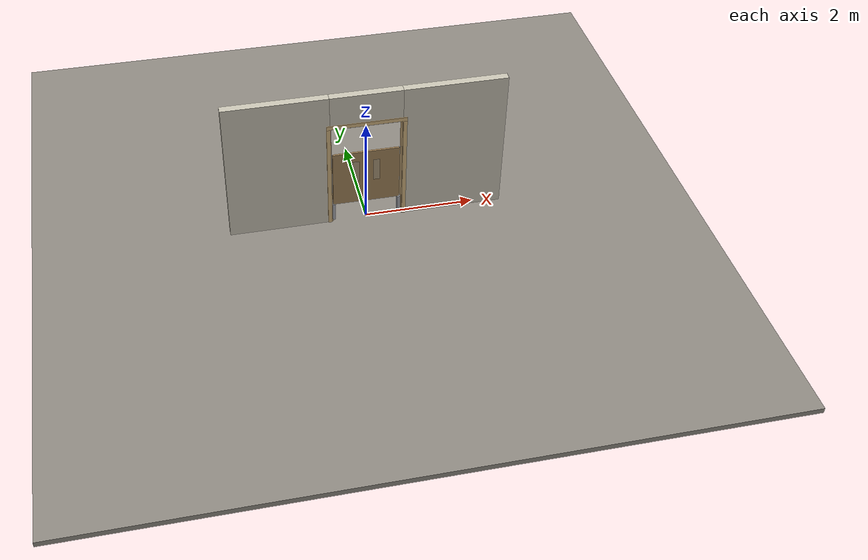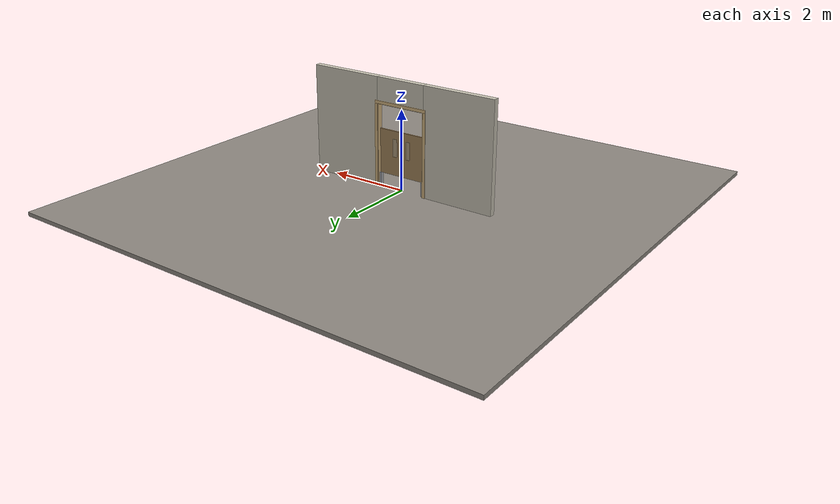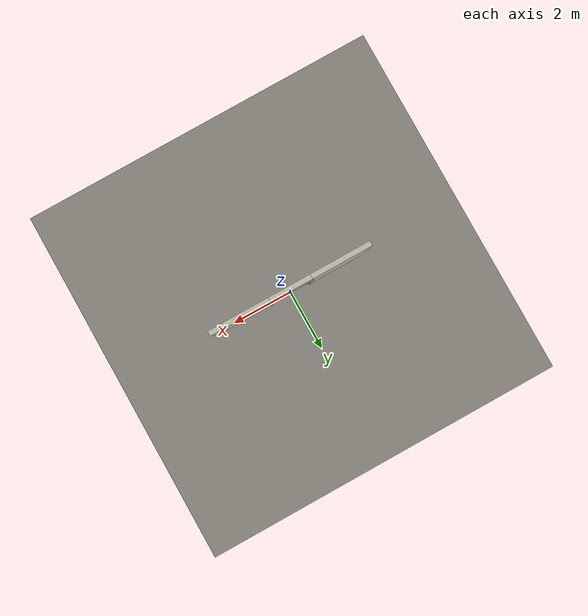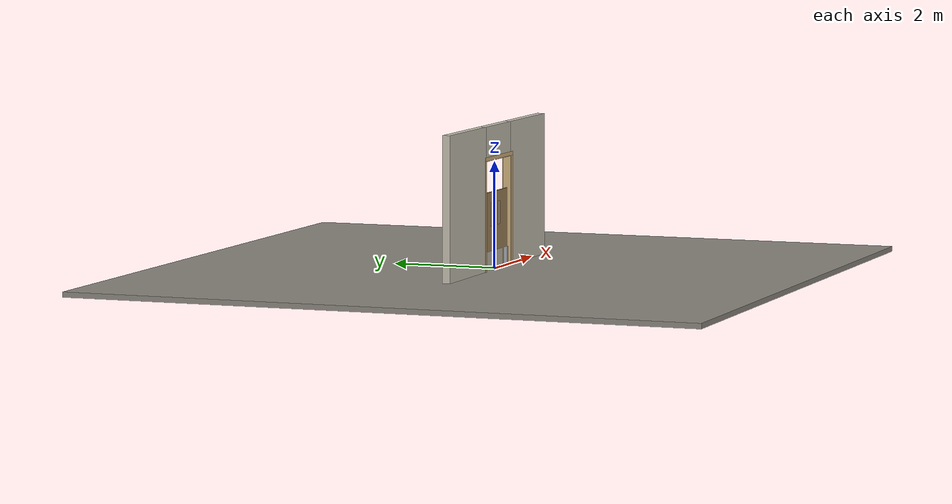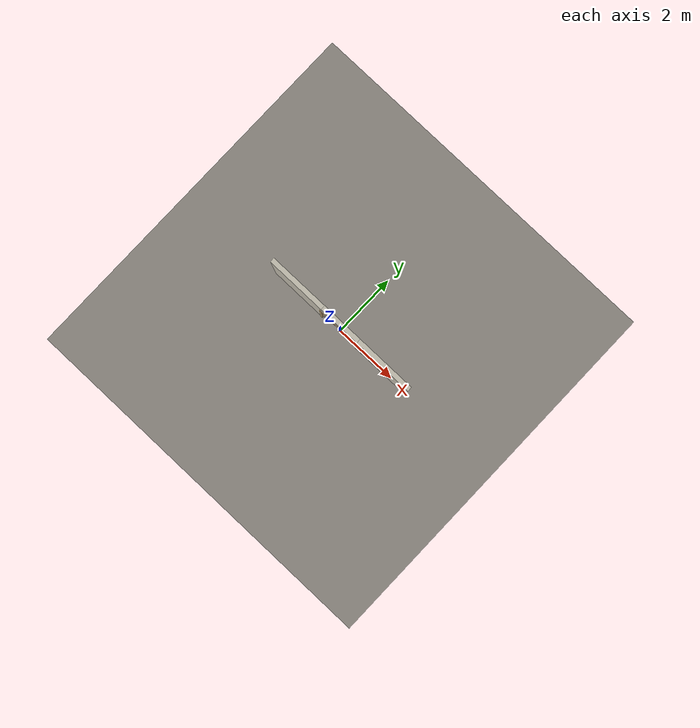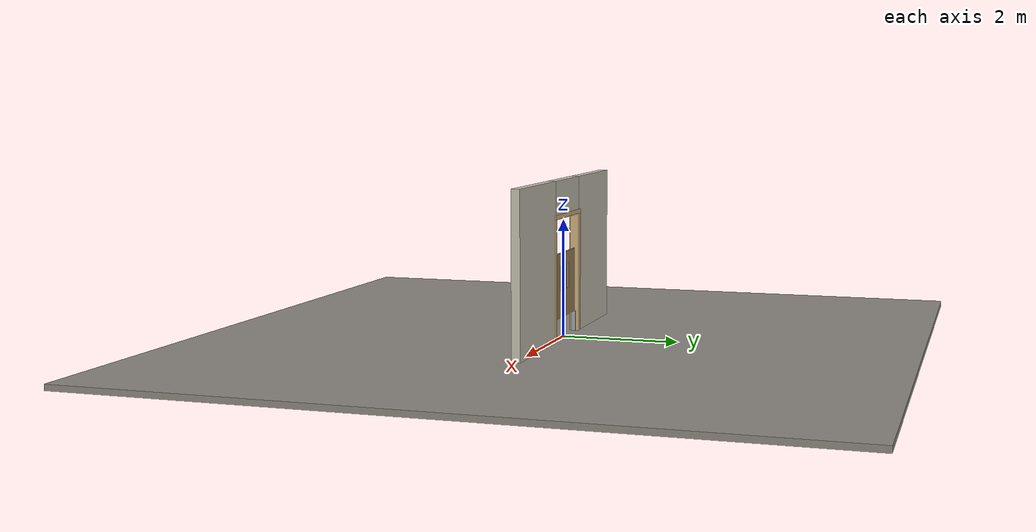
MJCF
<?xml version="1.0" ?>
<mujoco model="db0991_saloon_full">
  <compiler angle="radian" meshdir="../../hardware" texturedir="../../textures" autolimits="true" inertiafromgeom="false"/>
  <option timestep="0.002" integrator="implicitfast" cone="elliptic" impratio="10" noslip_iterations="3">
    <flag multiccd="enable"/>
  </option>
  <size memory="16M"/>
  <default>
    <geom condim="4" solref="0.005 1" solimp="0.95 0.99 0.001"/>
    <joint solreflimit="0.005 1" solimplimit="0.95 0.99 0.001"/>
    <tendon solreflimit="0.005 1"/>
    <equality solref="0.002 1"/>
  </default>
  <visual>
    <headlight ambient="0.4 0.4 0.4" diffuse="0.7 0.7 0.7" specular="0.2 0.2 0.2"/>
    <quality shadowsize="4096"/>
    <map znear="0.01" zfar="60"/>
  </visual>
  <asset>
    <material name="mat_floor" rgba="0.55 0.53 0.5 1" specular="0.2" shininess="0.15" reflectance="0"/>
    <material name="mat_wall" rgba="0.78 0.76 0.7 1" specular="0.2" shininess="0.1" reflectance="0"/>
    <material name="mat_frame" rgba="0.82 0.7 0.5 1" specular="0.2" shininess="0.45" reflectance="0"/>
    <material name="mat_leaf_a" rgba="0.629 0.51 0.345 1" specular="0.2" shininess="0.45" reflectance="0"/>
    <material name="mat_glass" rgba="0.85 0.92 0.95 0.25" specular="0.2" shininess="0.95" reflectance="0.1"/>
    <material name="mat_hinge" rgba="0.65 0.66 0.68 1" specular="0.74" shininess="0.5" reflectance="0.36"/>
    <material name="mat_leaf_b" rgba="0.629 0.51 0.345 1" specular="0.2" shininess="0.45" reflectance="0"/>
    <texture name="skybox" type="skybox" builtin="gradient" rgb1="0.6 0.7 0.85" rgb2="0.9 0.92 0.95" width="256" height="256"/>
  </asset>
  <worldbody>
    <light name="sun" pos="1.5 -2.5 4" dir="-0.3 0.5 -0.8" directional="true" diffuse="0.8 0.8 0.8" specular="0.3 0.3 0.3" castshadow="true"/>
    <light name="fill" pos="-1.5 2.5 3" dir="0.3 -0.5 -0.7" directional="true" diffuse="0.35 0.35 0.4" castshadow="false"/>
    <camera name="robot_view" pos="0 -2.546875 1.738125" xyaxes="1 0 0 0 0.26963 0.962964" fovy="52"/>
    <camera name="far_view" pos="0 2.546875 1.738125" xyaxes="-1 0 0 0 -0.26963 0.962964" fovy="52"/>
    <camera name="iso" pos="1.935625 -2.139375 2.145625" xyaxes="0.741536 0.670913 0 -0.242917 0.268487 0.932151" fovy="46"/>
    <camera name="detail_handle" pos="0.48 -0.8 1.28" xyaxes="0.97561 0.219512 0 -0.070934 0.315262 0.94635" fovy="38"/>
    <geom name="floor" type="box" size="6 6 0.05" pos="0 0 -0.05" material="mat_floor" group="0" contype="1" conaffinity="1" friction="0.8 0.005 0.0001" density="2400"/>
    <geom name="wall_left" type="box" size="0.92575 0.0725 1.35" pos="-1.57425 0 1.35" material="mat_wall" group="0" contype="1" conaffinity="1" friction="0.6 0.005 0.0001" density="800"/>
    <geom name="wall_right" type="box" size="0.92575 0.0725 1.35" pos="1.57425 0 1.35" material="mat_wall" group="0" contype="1" conaffinity="1" friction="0.6 0.005 0.0001" density="800"/>
    <geom name="wall_header" type="box" size="0.6485 0.0725 0.3155" pos="0 0 2.3845" material="mat_wall" group="0" contype="1" conaffinity="1" friction="0.6 0.005 0.0001" density="800"/>
    <geom name="jamb_hinge" type="box" size="0.0095 0.0725 1.025" pos="-0.639 0 1.025" material="mat_frame" group="0" contype="1" conaffinity="1" friction="0.6 0.005 0.0001" density="400"/>
    <geom name="jamb_strike" type="box" size="0.0095 0.0725 1.025" pos="0.639 0 1.025" material="mat_frame" group="0" contype="1" conaffinity="1" friction="0.6 0.005 0.0001" density="400"/>
    <geom name="stud_strike" type="box" size="0.015 0.0725 1.025" pos="0.6635 0 1.025" material="mat_wall" group="0" contype="1" conaffinity="1" friction="0.6 0.005 0.0001" density="500"/>
    <geom name="jamb_head" type="box" size="0.6635 0.0725 0.0095" pos="0.015 0 2.0595" material="mat_frame" group="0" contype="1" conaffinity="1" friction="0.6 0.005 0.0001" density="400"/>
    <geom name="head_stud" type="box" size="0.6635 0.0725 0.015" pos="0.015 0 2.084" material="mat_wall" group="0" contype="1" conaffinity="1" friction="0.6 0.005 0.0001" density="500"/>
    <geom name="casing_l_n" type="box" size="0.035 0.008 1.0345" pos="-0.6785 -0.0805 1.025" material="mat_frame" group="2" contype="0" conaffinity="0" density="400"/>
    <geom name="casing_r_n" type="box" size="0.035 0.008 1.0345" pos="0.6785 -0.0805 1.025" material="mat_frame" group="2" contype="0" conaffinity="0" density="400"/>
    <geom name="casing_h_n" type="box" size="0.7135 0.008 0.035" pos="0 -0.0805 2.099" material="mat_frame" group="2" contype="0" conaffinity="0" density="400"/>
    <geom name="casing_l_p" type="box" size="0.035 0.008 1.0345" pos="-0.6785 0.0805 1.025" material="mat_frame" group="2" contype="0" conaffinity="0" density="400"/>
    <geom name="casing_r_p" type="box" size="0.035 0.008 1.0345" pos="0.6785 0.0805 1.025" material="mat_frame" group="2" contype="0" conaffinity="0" density="400"/>
    <geom name="casing_h_p" type="box" size="0.7135 0.008 0.035" pos="0 0.0805 2.099" material="mat_frame" group="2" contype="0" conaffinity="0" density="400"/>
    <geom name="pivot_bottom_socket" type="box" size="0.035 0.035 0.179" pos="-0.606 0 0.169" material="mat_hinge" group="1" contype="0" conaffinity="0" density="7850"/>
    <geom name="pivot_bottom_socket_2" type="box" size="0.035 0.035 0.179" pos="0.606 0 0.169" material="mat_hinge" group="1" contype="0" conaffinity="0" density="7850"/>
    <site name="approach_point" pos="0 -1.5 0" quat="1 0 0 0" size="0.05" rgba="0.2 0.9 0.2 0.5" group="4"/>
    <site name="goal_point" pos="0 1.5 0" quat="1 0 0 0" size="0.05" rgba="0.2 0.9 0.2 0.5" group="4"/>
    <site name="door_plane_center" pos="0 0 1.025" quat="1 0 0 0" size="0.02" rgba="0.2 0.9 0.2 0.5" group="4"/>
    <body name="leaf_a" pos="-0.6295 0 0">
      <inertial pos="0.320823 0 0.900025" mass="9.5678" quat="0.499983 -0.499983 0.500017 0.500017" diaginertia="0.293085272 0.983401523 1.274542484"/>
      <joint name="leaf_a_hinge" type="hinge" axis="0 0 1" pos="0.0235 0 0" limited="true" range="-1.570796 1.570796" damping="0.775746" frictionloss="0.305791" stiffness="6" springref="0" armature="0.02"/>
      <geom name="leaf_a_slab" type="box" size="0.3 0.0175 0.55" pos="0.3235 0 0.9" material="mat_leaf_a" group="0" contype="1" conaffinity="1" friction="0.35 0.005 0.0001" density="1"/>
      <geom name="leaf_a_glass_0" type="box" size="0.06 0.0183 0.22" pos="0.4435 0 1.032" material="mat_glass" group="1" contype="0" conaffinity="0" density="1"/>
      <geom name="pivot_bottom" type="cylinder" size="0.014 0.004" pos="0.0235 0 0.345" material="mat_hinge" group="1" contype="0" conaffinity="0" density="7850"/>
      <geom name="pivot_top" type="cylinder" size="0.014 0.004" pos="0.0235 0 1.454" material="mat_hinge" group="1" contype="0" conaffinity="0" density="7850"/>
      <site name="leaf_a_push_site" pos="0.4735 -0.0175 1.01" quat="1 0 0 0" size="0.015" rgba="0.2 0.9 0.2 0.5" group="4"/>
    </body>
    <body name="leaf_b" pos="0.6295 0 0">
      <inertial pos="-0.320823 0 0.900025" mass="9.5678" quat="0.499983 0.499983 -0.500017 0.500017" diaginertia="0.293085272 0.983401523 1.274542484"/>
      <joint name="leaf_b_hinge" type="hinge" axis="0 0 -1" pos="-0.0235 0 0" limited="true" range="-1.570796 1.570796" damping="0.775746" frictionloss="0.305791" stiffness="6" springref="0" armature="0.02"/>
      <geom name="leaf_b_slab" type="box" size="0.3 0.0175 0.55" pos="-0.3235 0 0.9" material="mat_leaf_b" group="0" contype="1" conaffinity="1" friction="0.35 0.005 0.0001" density="1"/>
      <geom name="leaf_b_glass_0" type="box" size="0.06 0.0183 0.22" pos="-0.4435 0 1.032" material="mat_glass" group="1" contype="0" conaffinity="0" density="1"/>
      <geom name="pivot_bottom_2" type="cylinder" size="0.014 0.004" pos="-0.0235 0 0.345" material="mat_hinge" group="1" contype="0" conaffinity="0" density="7850"/>
      <geom name="pivot_top_2" type="cylinder" size="0.014 0.004" pos="-0.0235 0 1.454" material="mat_hinge" group="1" contype="0" conaffinity="0" density="7850"/>
      <site name="leaf_b_push_site" pos="-0.4735 -0.0175 1.01" quat="1 0 0 0" size="0.015" rgba="0.2 0.9 0.2 0.5" group="4"/>
    </body>
  </worldbody>
  <sensor>
    <jointpos name="leaf_a_hinge_pos" joint="leaf_a_hinge"/>
    <jointvel name="leaf_a_hinge_vel" joint="leaf_a_hinge"/>
    <jointpos name="leaf_b_hinge_pos" joint="leaf_b_hinge"/>
    <jointvel name="leaf_b_hinge_vel" joint="leaf_b_hinge"/>
  </sensor>
</mujoco>
